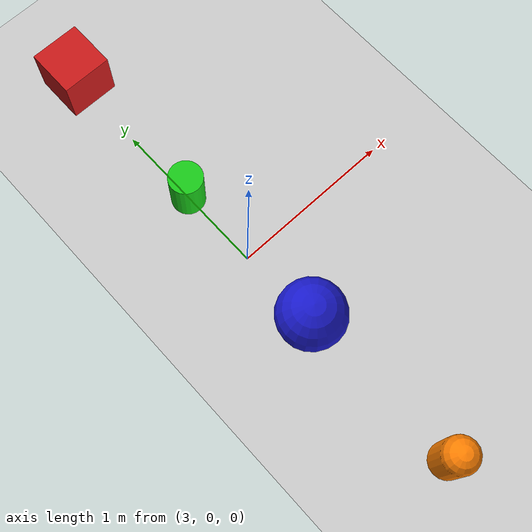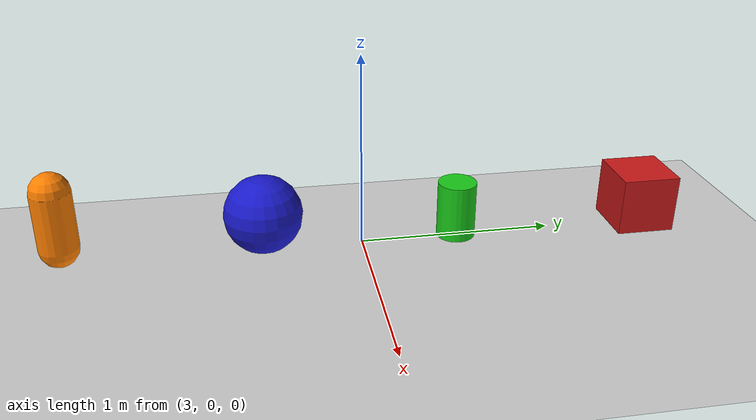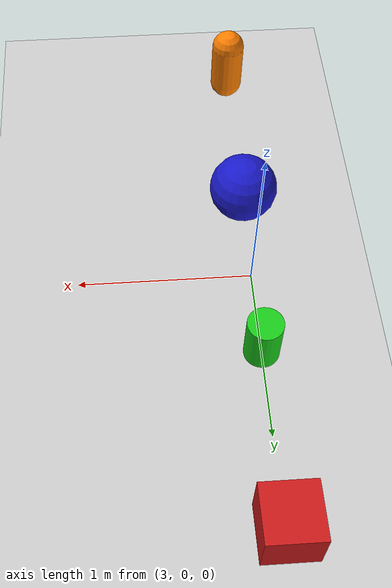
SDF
<?xml version="1.0" ?>
<sdf version="1.8">
  <world name="interview_world">
    <physics name="1ms" type="ignored">
      <max_step_size>0.001</max_step_size>
      <real_time_factor>1.0</real_time_factor>
    </physics>
    <plugin filename="gz-sim-physics-system" name="gz::sim::systems::Physics"/>
    <plugin filename="gz-sim-user-commands-system" name="gz::sim::systems::UserCommands"/>
    <plugin filename="gz-sim-scene-broadcaster-system" name="gz::sim::systems::SceneBroadcaster"/>
    <plugin filename="gz-sim-sensors-system" name="gz::sim::systems::Sensors">
      <render_engine>ogre2</render_engine>
    </plugin>
    <plugin filename="gz-sim-contact-system" name="gz::sim::systems::Contact"/>

    <light type="directional" name="sun">
      <cast_shadows>true</cast_shadows>
      <pose>0 0 10 0 0 0</pose>
      <diffuse>0.8 0.8 0.8 1</diffuse>
      <specular>0.2 0.2 0.2 1</specular>
      <direction>-0.5 0.1 -0.9</direction>
    </light>

    <model name="ground_plane">
      <static>true</static>
      <link name="link">
        <collision name="collision">
          <geometry><plane><normal>0 0 1</normal><size>100 100</size></plane></geometry>
        </collision>
        <visual name="visual">
          <geometry><plane><normal>0 0 1</normal><size>100 100</size></plane></geometry>
          <material>
            <ambient>0.8 0.8 0.8 1</ambient>
            <diffuse>0.8 0.8 0.8 1</diffuse>
          </material>
        </visual>
      </link>
    </model>

    <model name="target_box">
      <pose>3.0 1.5 0.15 0 0 0</pose>
      <link name="link">
        <collision name="col"><geometry><box><size>0.3 0.3 0.3</size></box></geometry></collision>
        <visual name="vis">
          <geometry><box><size>0.3 0.3 0.3</size></box></geometry>
          <material>
            <ambient>0.8 0.1 0.1 1</ambient>
            <diffuse>0.8 0.1 0.1 1</diffuse>
          </material>
        </visual>
      </link>
    </model>

    <model name="decoy_sphere">
      <pose>3.0 -0.5 0.2 0 0 0</pose>
      <link name="link">
        <collision name="col"><geometry><sphere><radius>0.2</radius></sphere></geometry></collision>
        <visual name="vis">
          <geometry><sphere><radius>0.2</radius></sphere></geometry>
          <material>
            <ambient>0.1 0.1 0.8 1</ambient>
            <diffuse>0.1 0.1 0.8 1</diffuse>
          </material>
        </visual>
      </link>
    </model>

    <model name="decoy_capsule">
      <pose>3.0 -1.5 0.25 0 0 0</pose>
      <link name="link">
        <collision name="col"><geometry><capsule><radius>0.1</radius><length>0.30</length></capsule></geometry></collision>
        <visual name="vis">
          <geometry><capsule><radius>0.1</radius><length>0.30</length></capsule></geometry>
          <material>
            <ambient>1.0 0.5 0.0 1</ambient>
            <diffuse>1.0 0.5 0.0 1</diffuse>
          </material>
        </visual>
      </link>
    </model>

    <model name="decoy_cylinder">
      <pose>3.0 0.5 0.15 0 0 0</pose>
      <link name="link">
        <collision name="col"><geometry><cylinder><radius>0.1</radius><length>0.30</length></cylinder></geometry></collision>
        <visual name="vis">
          <geometry><cylinder><radius>0.1</radius><length>0.30</length></cylinder></geometry>
          <material>
            <ambient>0.1 0.8 0.1 1</ambient>
            <diffuse>0.1 0.8 0.1 1</diffuse>
          </material>
        </visual>
      </link>
    </model>

  </world>
</sdf>
